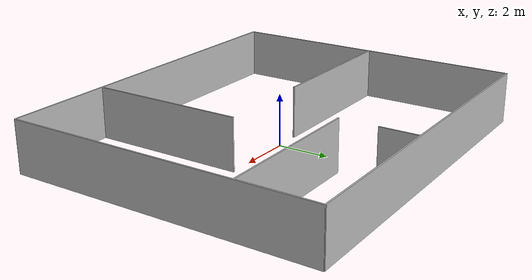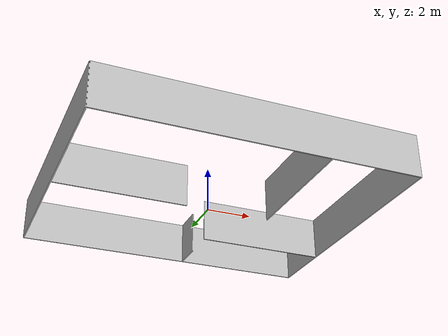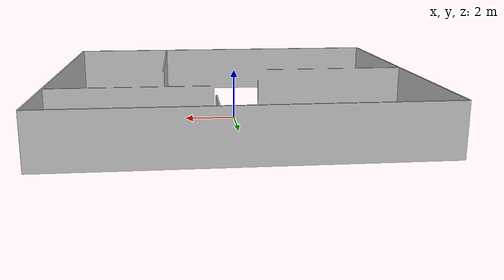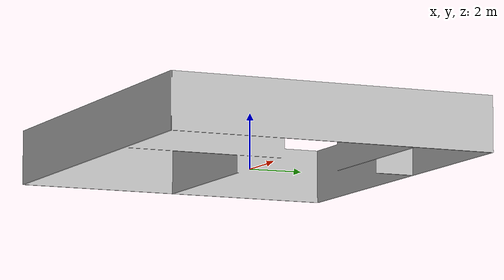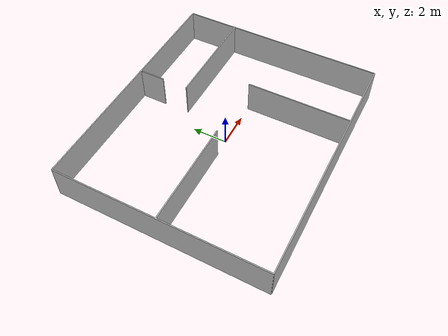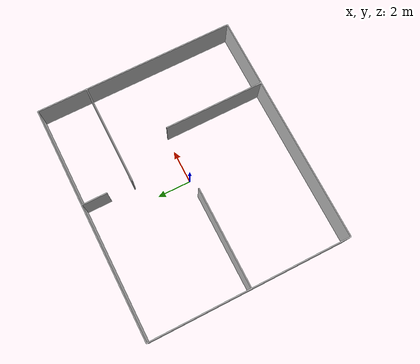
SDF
<?xml version="1.0" ?>
<sdf version="1.5">
  <model name="apartment_1">
    <link name="link">
      <pose>0 0 0 0 0 0</pose>
      <collision name="collision">
        <geometry>
          <mesh>
            <uri>model://apartment_1/meshes/model.dae</uri>
          </mesh>
        </geometry>
      </collision>
      <visual name="visual">
        <geometry>
          <mesh>
            <uri>model://apartment_1/meshes/model.dae</uri>
          </mesh>
        </geometry>
      </visual>
    </link>
    <static>1</static>
  </model>
</sdf>
